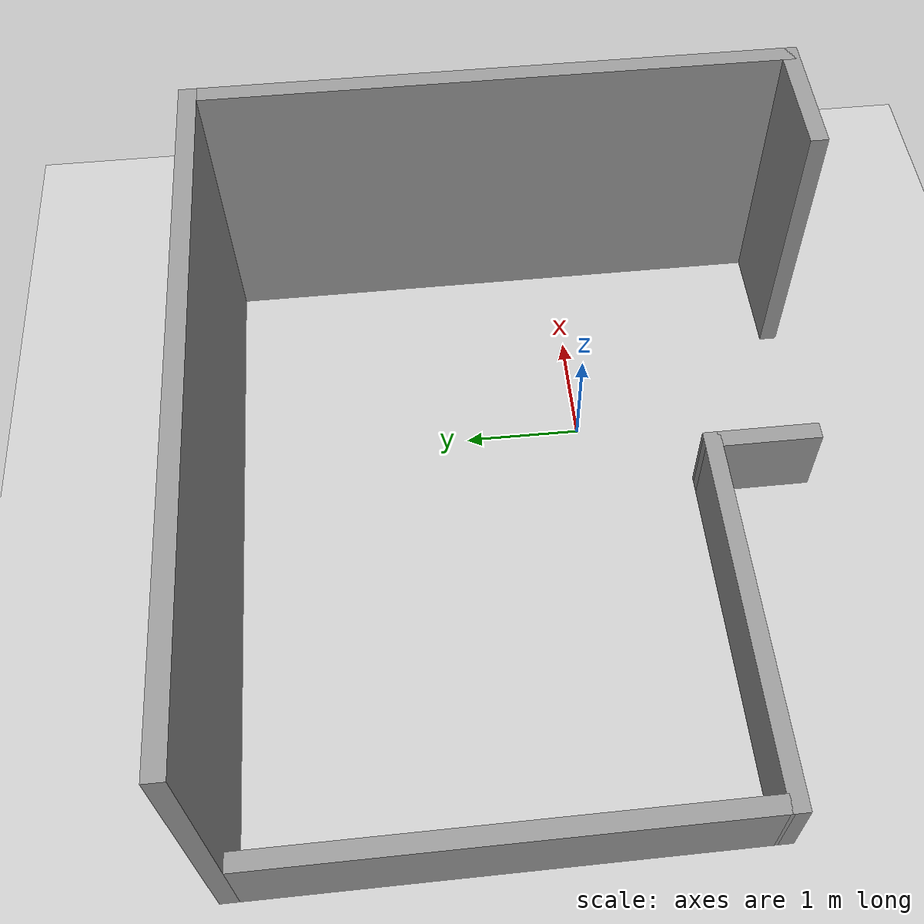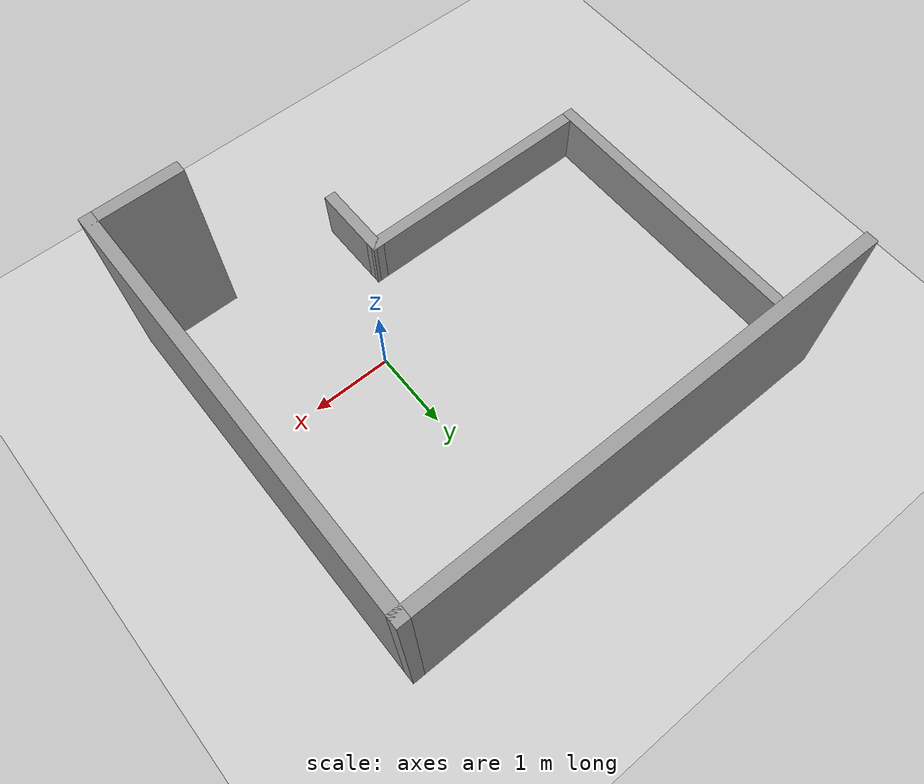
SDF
<sdf version="1.4">
 <world name="default">
  <light name="sun" type="directional">
   <pose>-7 0 10 0 -0.5 0</pose>
   <diffuse>0.8 0.8 0.8 1</diffuse>
   <specular>0.2 0.2 0.2 1</specular>
   <attenuation>
    <range>1000</range>
    <constant>0.9</constant>
    <linear>0.01</linear>
    <quadratic>0.001</quadratic>
   </attenuation>
   <direction>-0.5 0.1 -0.9</direction>
  </light>
  <light name="fill_light" type="directional">
   <pose>9 4 1 3.1415 1.187 3.1415</pose>
   <diffuse>0.5 0.5 0.5 1</diffuse>
   <specular>0.1 0.1 0.1 1</specular>
   <attenuation>
    <range>20</range>
    <constant>0.5</constant>
    <linear>0.01</linear>
    <quadratic>0.001</quadratic>
   </attenuation>
   <direction>-0.5 0.1 -0.9</direction>
  </light>
  <model name="ground_plane">
   <static>1</static>
   <link name="link">
    <collision name="collision">
     <geometry><plane><normal>0 0 1</normal><size>100 100</size></plane></geometry>
     <surface><friction><ode><mu>100</mu><mu2>50</mu2></ode></friction></surface>
    </collision>
    <visual name="visual">
     <cast_shadows>0</cast_shadows>
     <geometry><plane><normal>0 0 1</normal><size>100 100</size></plane></geometry>
     <material>
      <script><uri>file://media/materials/scripts/gazebo.material</uri><name>Gazebo/Grey</name></script>
     </material>
    </visual>
   </link>
  </model>
  <physics name="default_physics" default="0" type="ode">
   <max_step_size>0.001</max_step_size>
   <real_time_factor>1</real_time_factor>
   <real_time_update_rate>1000</real_time_update_rate>
   <gravity>0 0 -9.8</gravity>
   <magnetic_field>5.5645e-06 2.28758e-05 -4.23884e-05</magnetic_field>
  </physics>
  <scene><ambient>0.4 0.4 0.4 1</ambient><background>0.7 0.7 0.7 1</background><shadows>1</shadows></scene>
  <spherical_coordinates>
   <surface_model>EARTH_WGS84</surface_model>
   <latitude_deg>0</latitude_deg>
   <longitude_deg>0</longitude_deg>
   <elevation>0</elevation>
   <heading_deg>0</heading_deg>
  </spherical_coordinates>
  <model name="kitchen">
   <pose>-0.926484 0.562175 0 0 -0 0</pose>
   <link name="Wall_1">
    <collision name="Wall_1_Collision">
     <geometry><box><size>1.1376 0.15 2.5</size></box></geometry>
     <pose>0 0 1.25 0 -0 0</pose>
    </collision>
    <visual name="Wall_1_Visual">
     <pose>0 0 1.25 0 -0 0</pose>
     <geometry><box><size>1.1376 0.15 2.5</size></box></geometry>
     <material>
      <script><uri>file://media/materials/scripts/gazebo.material</uri><name>Gazebo/Grey</name></script>
      <ambient>1 1 1 1</ambient>
     </material>
    </visual>
    <pose>2.38151 -2.516 0 0 -0 3.14159</pose>
   </link>
   <link name="Wall_2">
    <collision name="Wall_2_Collision">
     <geometry><box><size>5.182 0.15 2.5</size></box></geometry>
     <pose>0 0 1.25 0 -0 0</pose>
    </collision>
    <visual name="Wall_2_Visual">
     <pose>0 0 1.25 0 -0 0</pose>
     <geometry><box><size>5.182 0.15 2.5</size></box></geometry>
     <material>
      <script><uri>file://media/materials/scripts/gazebo.material</uri><name>Gazebo/Grey</name></script>
      <ambient>1 1 1 1</ambient>
     </material>
    </visual>
    <pose>2.87551 0 0 0 -0 1.5708</pose>
   </link>
   <link name="Wall_3">
    <collision name="Wall_3_Collision">
     <geometry><box><size>5.901 0.15 2.5</size></box></geometry>
     <pose>0 0 1.25 0 -0 0</pose>
    </collision>
    <visual name="Wall_3_Visual">
     <pose>0 0 1.25 0 -0 0</pose>
     <geometry><box><size>5.901 0.15 2.5</size></box></geometry>
     <material>
      <script><uri>file://media/materials/scripts/gazebo.material</uri><name>Gazebo/Grey</name></script>
      <ambient>1 1 1 1</ambient>
     </material>
    </visual>
    <pose>6e-06 2.516 0 0 -0 3.14159</pose>
   </link>
   <link name="Wall_4">
    <collision name="Wall_4_Collision">
     <geometry><box><size>4.25 0.15 0.7</size></box></geometry>
     <pose>0 0 0.35 0 -0 0</pose>
    </collision>
    <visual name="Wall_4_Visual">
     <pose>0 0 0.35 0 -0 0</pose>
     <geometry><box><size>4.25 0.15 0.7</size></box></geometry>
     <material>
      <script><uri>file://media/materials/scripts/gazebo.material</uri><name>Gazebo/Grey</name></script>
      <ambient>1 1 1 1</ambient>
     </material>
    </visual>
    <pose>-2.87549 0.466 0 0 0 -1.5708</pose>
   </link>
   <link name="Wall_5">
    <collision name="Wall_5_Collision">
     <geometry><box><size>3.27328 0.15 0.7</size></box></geometry>
     <pose>0 0 0.35 0 -0 0</pose>
    </collision>
    <visual name="Wall_5_Visual">
     <pose>0 0 0.35 0 -0 0</pose>
     <geometry><box><size>3.27328 0.15 0.7</size></box></geometry>
     <material>
      <script><uri>file://media/materials/scripts/gazebo.material</uri><name>Gazebo/Grey</name></script>
      <ambient>1 1 1 1</ambient>
     </material>
    </visual>
    <pose>-1.31385 -1.58376 0 0 -0 0.000157</pose>
   </link>
   <link name="Wall_6">
    <collision name="Wall_6_Collision">
     <geometry><box><size>1 0.15 0.7</size></box></geometry>
     <pose>0 0 0.35 0 -0 0</pose>
    </collision>
    <visual name="Wall_6_Visual">
     <pose>0 0 0.35 0 -0 0</pose>
     <geometry><box><size>1 0.15 0.7</size></box></geometry>
     <material>
      <script><uri>file://media/materials/scripts/gazebo.material</uri><name>Gazebo/Grey</name></script>
      <ambient>1 1 1 1</ambient>
     </material>
    </visual>
    <pose>0.247785 -2.00851 0 0 0 -1.5708</pose>
   </link>
   <static>1</static>
  </model>
 </world>
</sdf>
